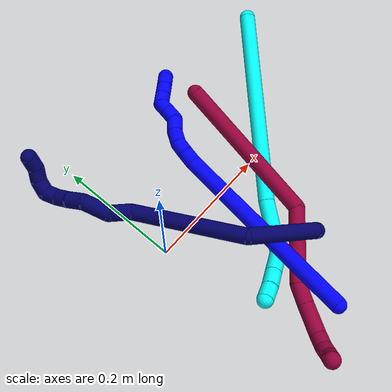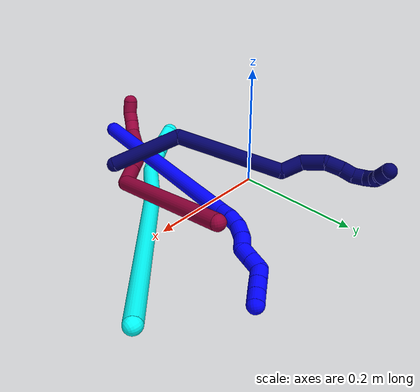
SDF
<sdf version="1.7">
 <world name="default">
  <model name="1">
   <static>0</static>
   <link name="1">
    <collision name="collision-cylinder-e_1_1_4">
     <pose>0.086936 0.073921 -0.103767 -2.52261 0.598793 -1.53551</pose>
     <geometry><cylinder><radius>0.0125</radius><length>0.308479</length></cylinder></geometry>
     <surface>
      <friction><ode><mu>1.16</mu><mu2>1.16</mu2><slip1>0</slip1><slip2>0</slip2></ode></friction>
      <contact><ode><kp>1e+06</kp><kd>1</kd><max_vel>0</max_vel><min_depth>0.001</min_depth></ode></contact>
     </surface>
    </collision>
    <visual name="visual-cylinder-e_1_1_4">
     <pose>0.086936 0.073921 -0.103767 -2.52261 0.598793 -1.53551</pose>
     <geometry><cylinder><radius>0.0125</radius><length>0.308479</length></cylinder></geometry>
     <material><ambient>0 0 1 1</ambient></material>
    </visual>
    <collision name="collision-cylinder-e_2_4_5">
     <pose>0.178797 0.154028 -0.214341 -2.40386 0.491513 -1.15116</pose>
     <geometry><cylinder><radius>0.0125</radius><length>0.020867</length></cylinder></geometry>
     <surface>
      <friction><ode><mu>1.16</mu><mu2>1.16</mu2><slip1>0</slip1><slip2>0</slip2></ode></friction>
      <contact><ode><kp>1e+06</kp><kd>1</kd><max_vel>0</max_vel><min_depth>0.001</min_depth></ode></contact>
     </surface>
    </collision>
    <visual name="visual-cylinder-e_2_4_5">
     <pose>0.178797 0.154028 -0.214341 -2.40386 0.491513 -1.15116</pose>
     <geometry><cylinder><radius>0.0125</radius><length>0.020867</length></cylinder></geometry>
     <material><ambient>0 0 1 1</ambient></material>
    </visual>
    <collision name="collision-cylinder-e_3_5_6">
     <pose>0.190608 0.166019 -0.226943 -2.35548 0.698456 -1.44135</pose>
     <geometry><cylinder><radius>0.0125</radius><length>0.021419</length></cylinder></geometry>
     <surface>
      <friction><ode><mu>1.16</mu><mu2>1.16</mu2><slip1>0</slip1><slip2>0</slip2></ode></friction>
      <contact><ode><kp>1e+06</kp><kd>1</kd><max_vel>0</max_vel><min_depth>0.001</min_depth></ode></contact>
     </surface>
    </collision>
    <visual name="visual-cylinder-e_3_5_6">
     <pose>0.190608 0.166019 -0.226943 -2.35548 0.698456 -1.44135</pose>
     <geometry><cylinder><radius>0.0125</radius><length>0.021419</length></cylinder></geometry>
     <material><ambient>0 0 1 1</ambient></material>
    </visual>
    <collision name="collision-cylinder-e_4_6_7">
     <pose>0.205592 0.180202 -0.236097 -1.95196 0.73118 -1.0298</pose>
     <geometry><cylinder><radius>0.0125</radius><length>0.024254</length></cylinder></geometry>
     <surface>
      <friction><ode><mu>1.16</mu><mu2>1.16</mu2><slip1>0</slip1><slip2>0</slip2></ode></friction>
      <contact><ode><kp>1e+06</kp><kd>1</kd><max_vel>0</max_vel><min_depth>0.001</min_depth></ode></contact>
     </surface>
    </collision>
    <visual name="visual-cylinder-e_4_6_7">
     <pose>0.205592 0.180202 -0.236097 -1.95196 0.73118 -1.0298</pose>
     <geometry><cylinder><radius>0.0125</radius><length>0.024254</length></cylinder></geometry>
     <material><ambient>0 0 1 1</ambient></material>
    </visual>
    <collision name="collision-cylinder-e_5_7_8">
     <pose>0.220832 0.19812 -0.240018 -1.62976 0.641848 -0.678007</pose>
     <geometry><cylinder><radius>0.0125</radius><length>0.023859</length></cylinder></geometry>
     <surface>
      <friction><ode><mu>1.16</mu><mu2>1.16</mu2><slip1>0</slip1><slip2>0</slip2></ode></friction>
      <contact><ode><kp>1e+06</kp><kd>1</kd><max_vel>0</max_vel><min_depth>0.001</min_depth></ode></contact>
     </surface>
    </collision>
    <visual name="visual-cylinder-e_5_7_8">
     <pose>0.220832 0.19812 -0.240018 -1.62976 0.641848 -0.678007</pose>
     <geometry><cylinder><radius>0.0125</radius><length>0.023859</length></cylinder></geometry>
     <material><ambient>0 0 1 1</ambient></material>
    </visual>
    <collision name="collision-cylinder-e_6_8_9">
     <pose>0.23509 0.212753 -0.24636 -2.41909 0.745778 -1.60553</pose>
     <geometry><cylinder><radius>0.0125</radius><length>0.020976</length></cylinder></geometry>
     <surface>
      <friction><ode><mu>1.16</mu><mu2>1.16</mu2><slip1>0</slip1><slip2>0</slip2></ode></friction>
      <contact><ode><kp>1e+06</kp><kd>1</kd><max_vel>0</max_vel><min_depth>0.001</min_depth></ode></contact>
     </surface>
    </collision>
    <visual name="visual-cylinder-e_6_8_9">
     <pose>0.23509 0.212753 -0.24636 -2.41909 0.745778 -1.60553</pose>
     <geometry><cylinder><radius>0.0125</radius><length>0.020976</length></cylinder></geometry>
     <material><ambient>0 0 1 1</ambient></material>
    </visual>
    <collision name="collision-cylinder-e_7_9_10">
     <pose>0.249075 0.222603 -0.257753 -2.43873 0.751002 -1.64319</pose>
     <geometry><cylinder><radius>0.0125</radius><length>0.02013</length></cylinder></geometry>
     <surface>
      <friction><ode><mu>1.16</mu><mu2>1.16</mu2><slip1>0</slip1><slip2>0</slip2></ode></friction>
      <contact><ode><kp>1e+06</kp><kd>1</kd><max_vel>0</max_vel><min_depth>0.001</min_depth></ode></contact>
     </surface>
    </collision>
    <visual name="visual-cylinder-e_7_9_10">
     <pose>0.249075 0.222603 -0.257753 -2.43873 0.751002 -1.64319</pose>
     <geometry><cylinder><radius>0.0125</radius><length>0.02013</length></cylinder></geometry>
     <material><ambient>0 0 1 1</ambient></material>
    </visual>
    <collision name="collision-cylinder-e_8_10_11">
     <pose>0.262315 0.235024 -0.262526 -1.46153 0.690584 -0.623754</pose>
     <geometry><cylinder><radius>0.0125</radius><length>0.020006</length></cylinder></geometry>
     <surface>
      <friction><ode><mu>1.16</mu><mu2>1.16</mu2><slip1>0</slip1><slip2>0</slip2></ode></friction>
      <contact><ode><kp>1e+06</kp><kd>1</kd><max_vel>0</max_vel><min_depth>0.001</min_depth></ode></contact>
     </surface>
    </collision>
    <visual name="visual-cylinder-e_8_10_11">
     <pose>0.262315 0.235024 -0.262526 -1.46153 0.690584 -0.623754</pose>
     <geometry><cylinder><radius>0.0125</radius><length>0.020006</length></cylinder></geometry>
     <material><ambient>0 0 1 1</ambient></material>
    </visual>
    <collision name="collision-cylinder-e_9_11_12">
     <pose>0.275085 0.250338 -0.260872 -1.46486 0.693881 -0.628746</pose>
     <geometry><cylinder><radius>0.0125</radius><length>0.02001</length></cylinder></geometry>
     <surface>
      <friction><ode><mu>1.16</mu><mu2>1.16</mu2><slip1>0</slip1><slip2>0</slip2></ode></friction>
      <contact><ode><kp>1e+06</kp><kd>1</kd><max_vel>0</max_vel><min_depth>0.001</min_depth></ode></contact>
     </surface>
    </collision>
    <visual name="visual-cylinder-e_9_11_12">
     <pose>0.275085 0.250338 -0.260872 -1.46486 0.693881 -0.628746</pose>
     <geometry><cylinder><radius>0.0125</radius><length>0.02001</length></cylinder></geometry>
     <material><ambient>0 0 1 1</ambient></material>
    </visual>
    <collision name="collision-cylinder-e_10_12_2">
     <pose>0.287603 0.265879 -0.259544 -1.50573 0.658471 -0.619649</pose>
     <geometry><cylinder><radius>0.0125</radius><length>0.02</length></cylinder></geometry>
     <surface>
      <friction><ode><mu>1.16</mu><mu2>1.16</mu2><slip1>0</slip1><slip2>0</slip2></ode></friction>
      <contact><ode><kp>1e+06</kp><kd>1</kd><max_vel>0</max_vel><min_depth>0.001</min_depth></ode></contact>
     </surface>
    </collision>
    <visual name="visual-cylinder-e_10_12_2">
     <pose>0.287603 0.265879 -0.259544 -1.50573 0.658471 -0.619649</pose>
     <geometry><cylinder><radius>0.0125</radius><length>0.02</length></cylinder></geometry>
     <material><ambient>0 0 1 1</ambient></material>
    </visual>
    <collision name="collision-sphere-2">
     <pose>0.293722 0.273771 -0.25903 0 -0 0</pose>
     <geometry><sphere><radius>0.0125</radius></sphere></geometry>
     <surface>
      <friction><ode><mu>1.16</mu><mu2>1.16</mu2><slip1>0</slip1><slip2>0</slip2></ode></friction>
      <contact><ode><kp>1e+06</kp><kd>1</kd><max_vel>0</max_vel><min_depth>0.001</min_depth></ode></contact>
     </surface>
    </collision>
    <visual name="visual-sphere-2">
     <pose>0.293722 0.273771 -0.25903 0 -0 0</pose>
     <geometry><sphere><radius>0.0125</radius></sphere></geometry>
     <material><ambient>0 0 1 1</ambient></material>
    </visual>
    <collision name="collision-sphere-12">
     <pose>0.281484 0.257986 -0.260059 0 -0 0</pose>
     <geometry><sphere><radius>0.0125</radius></sphere></geometry>
     <surface>
      <friction><ode><mu>1.16</mu><mu2>1.16</mu2><slip1>0</slip1><slip2>0</slip2></ode></friction>
      <contact><ode><kp>1e+06</kp><kd>1</kd><max_vel>0</max_vel><min_depth>0.001</min_depth></ode></contact>
     </surface>
    </collision>
    <visual name="visual-sphere-12">
     <pose>0.281484 0.257986 -0.260059 0 -0 0</pose>
     <geometry><sphere><radius>0.0125</radius></sphere></geometry>
     <material><ambient>0 0 1 1</ambient></material>
    </visual>
    <collision name="collision-sphere-11">
     <pose>0.268686 0.242689 -0.261685 0 -0 0</pose>
     <geometry><sphere><radius>0.0125</radius></sphere></geometry>
     <surface>
      <friction><ode><mu>1.16</mu><mu2>1.16</mu2><slip1>0</slip1><slip2>0</slip2></ode></friction>
      <contact><ode><kp>1e+06</kp><kd>1</kd><max_vel>0</max_vel><min_depth>0.001</min_depth></ode></contact>
     </surface>
    </collision>
    <visual name="visual-sphere-11">
     <pose>0.268686 0.242689 -0.261685 0 -0 0</pose>
     <geometry><sphere><radius>0.0125</radius></sphere></geometry>
     <material><ambient>0 0 1 1</ambient></material>
    </visual>
    <collision name="collision-sphere-10">
     <pose>0.255943 0.227359 -0.263367 0 -0 0</pose>
     <geometry><sphere><radius>0.0125</radius></sphere></geometry>
     <surface>
      <friction><ode><mu>1.16</mu><mu2>1.16</mu2><slip1>0</slip1><slip2>0</slip2></ode></friction>
      <contact><ode><kp>1e+06</kp><kd>1</kd><max_vel>0</max_vel><min_depth>0.001</min_depth></ode></contact>
     </surface>
    </collision>
    <visual name="visual-sphere-10">
     <pose>0.255943 0.227359 -0.263367 0 -0 0</pose>
     <geometry><sphere><radius>0.0125</radius></sphere></geometry>
     <material><ambient>0 0 1 1</ambient></material>
    </visual>
    <collision name="collision-sphere-9">
     <pose>0.242207 0.217847 -0.252139 0 -0 0</pose>
     <geometry><sphere><radius>0.0125</radius></sphere></geometry>
     <surface>
      <friction><ode><mu>1.16</mu><mu2>1.16</mu2><slip1>0</slip1><slip2>0</slip2></ode></friction>
      <contact><ode><kp>1e+06</kp><kd>1</kd><max_vel>0</max_vel><min_depth>0.001</min_depth></ode></contact>
     </surface>
    </collision>
    <visual name="visual-sphere-9">
     <pose>0.242207 0.217847 -0.252139 0 -0 0</pose>
     <geometry><sphere><radius>0.0125</radius></sphere></geometry>
     <material><ambient>0 0 1 1</ambient></material>
    </visual>
    <collision name="collision-sphere-4">
     <pose>0.173873 0.147841 -0.207534 0 -0 0</pose>
     <geometry><sphere><radius>0.0125</radius></sphere></geometry>
     <surface>
      <friction><ode><mu>1.16</mu><mu2>1.16</mu2><slip1>0</slip1><slip2>0</slip2></ode></friction>
      <contact><ode><kp>1e+06</kp><kd>1</kd><max_vel>0</max_vel><min_depth>0.001</min_depth></ode></contact>
     </surface>
    </collision>
    <visual name="visual-sphere-4">
     <pose>0.173873 0.147841 -0.207534 0 -0 0</pose>
     <geometry><sphere><radius>0.0125</radius></sphere></geometry>
     <material><ambient>0 0 1 1</ambient></material>
    </visual>
    <collision name="collision-sphere-1">
     <geometry><sphere><radius>0.0125</radius></sphere></geometry>
     <surface>
      <friction><ode><mu>1.16</mu><mu2>1.16</mu2><slip1>0</slip1><slip2>0</slip2></ode></friction>
      <contact><ode><kp>1e+06</kp><kd>1</kd><max_vel>0</max_vel><min_depth>0.001</min_depth></ode></contact>
     </surface>
    </collision>
    <visual name="visual-sphere-1">
     <geometry><sphere><radius>0.0125</radius></sphere></geometry>
     <material><ambient>0 0 1 1</ambient></material>
    </visual>
    <collision name="collision-sphere-8">
     <pose>0.227974 0.207658 -0.240581 0 -0 0</pose>
     <geometry><sphere><radius>0.0125</radius></sphere></geometry>
     <surface>
      <friction><ode><mu>1.16</mu><mu2>1.16</mu2><slip1>0</slip1><slip2>0</slip2></ode></friction>
      <contact><ode><kp>1e+06</kp><kd>1</kd><max_vel>0</max_vel><min_depth>0.001</min_depth></ode></contact>
     </surface>
    </collision>
    <visual name="visual-sphere-8">
     <pose>0.227974 0.207658 -0.240581 0 -0 0</pose>
     <geometry><sphere><radius>0.0125</radius></sphere></geometry>
     <material><ambient>0 0 1 1</ambient></material>
    </visual>
    <collision name="collision-sphere-5">
     <pose>0.183721 0.160215 -0.221148 0 -0 0</pose>
     <geometry><sphere><radius>0.0125</radius></sphere></geometry>
     <surface>
      <friction><ode><mu>1.16</mu><mu2>1.16</mu2><slip1>0</slip1><slip2>0</slip2></ode></friction>
      <contact><ode><kp>1e+06</kp><kd>1</kd><max_vel>0</max_vel><min_depth>0.001</min_depth></ode></contact>
     </surface>
    </collision>
    <visual name="visual-sphere-5">
     <pose>0.183721 0.160215 -0.221148 0 -0 0</pose>
     <geometry><sphere><radius>0.0125</radius></sphere></geometry>
     <material><ambient>0 0 1 1</ambient></material>
    </visual>
    <collision name="collision-sphere-6">
     <pose>0.197495 0.171822 -0.232738 0 -0 0</pose>
     <geometry><sphere><radius>0.0125</radius></sphere></geometry>
     <surface>
      <friction><ode><mu>1.16</mu><mu2>1.16</mu2><slip1>0</slip1><slip2>0</slip2></ode></friction>
      <contact><ode><kp>1e+06</kp><kd>1</kd><max_vel>0</max_vel><min_depth>0.001</min_depth></ode></contact>
     </surface>
    </collision>
    <visual name="visual-sphere-6">
     <pose>0.197495 0.171822 -0.232738 0 -0 0</pose>
     <geometry><sphere><radius>0.0125</radius></sphere></geometry>
     <material><ambient>0 0 1 1</ambient></material>
    </visual>
    <collision name="collision-sphere-7">
     <pose>0.21369 0.188581 -0.239455 0 -0 0</pose>
     <geometry><sphere><radius>0.0125</radius></sphere></geometry>
     <surface>
      <friction><ode><mu>1.16</mu><mu2>1.16</mu2><slip1>0</slip1><slip2>0</slip2></ode></friction>
      <contact><ode><kp>1e+06</kp><kd>1</kd><max_vel>0</max_vel><min_depth>0.001</min_depth></ode></contact>
     </surface>
    </collision>
    <visual name="visual-sphere-7">
     <pose>0.21369 0.188581 -0.239455 0 -0 0</pose>
     <geometry><sphere><radius>0.0125</radius></sphere></geometry>
     <material><ambient>0 0 1 1</ambient></material>
    </visual>
    <inertial>
     <pose>0.142673 0.125286 -0.157631 0 -0 0</pose>
     <mass>0.5</mass>
     <inertia>
      <ixx>-0.001938</ixx>
      <ixy>0</ixy>
      <ixz>0</ixz>
      <iyy>-0.001279</iyy>
      <iyz>0</iyz>
      <izz>-0.002603</izz>
     </inertia>
    </inertial>
   </link>
   <pose>0.091416 -0.246867 0.042864 2.02371 0.952592 1.03103</pose>
  </model>
  <model name="3">
   <static>0</static>
   <link name="3">
    <collision name="collision-cylinder-e_1_1_4">
     <pose>-0.093819 -0.087201 -0.099148 2.42022 -0.617763 -1.40431</pose>
     <geometry><cylinder><radius>0.0125</radius><length>0.323954</length></cylinder></geometry>
     <surface>
      <friction><ode><mu>1.16</mu><mu2>1.16</mu2><slip1>0</slip1><slip2>0</slip2></ode></friction>
      <contact><ode><kp>1e+06</kp><kd>1</kd><max_vel>0</max_vel><min_depth>0.001</min_depth></ode></contact>
     </surface>
    </collision>
    <visual name="visual-cylinder-e_1_1_4">
     <pose>-0.093819 -0.087201 -0.099148 2.42022 -0.617763 -1.40431</pose>
     <geometry><cylinder><radius>0.0125</radius><length>0.323954</length></cylinder></geometry>
     <material><ambient>0.003922 1 0.996078 1</ambient></material>
    </visual>
    <collision name="collision-cylinder-e_2_4_5">
     <pose>-0.2165 -0.194679 -0.221045 2.41358 -0.758255 -1.61549</pose>
     <geometry><cylinder><radius>0.0125</radius><length>0.083943</length></cylinder></geometry>
     <surface>
      <friction><ode><mu>1.16</mu><mu2>1.16</mu2><slip1>0</slip1><slip2>0</slip2></ode></friction>
      <contact><ode><kp>1e+06</kp><kd>1</kd><max_vel>0</max_vel><min_depth>0.001</min_depth></ode></contact>
     </surface>
    </collision>
    <visual name="visual-cylinder-e_2_4_5">
     <pose>-0.2165 -0.194679 -0.221045 2.41358 -0.758255 -1.61549</pose>
     <geometry><cylinder><radius>0.0125</radius><length>0.083943</length></cylinder></geometry>
     <material><ambient>0.003922 1 0.996078 1</ambient></material>
    </visual>
    <collision name="collision-cylinder-e_3_5_6">
     <pose>-0.256812 -0.213966 -0.260256 -3.08158 -0.60682 2.95042</pose>
     <geometry><cylinder><radius>0.0125</radius><length>0.040155</length></cylinder></geometry>
     <surface>
      <friction><ode><mu>1.16</mu><mu2>1.16</mu2><slip1>0</slip1><slip2>0</slip2></ode></friction>
      <contact><ode><kp>1e+06</kp><kd>1</kd><max_vel>0</max_vel><min_depth>0.001</min_depth></ode></contact>
     </surface>
    </collision>
    <visual name="visual-cylinder-e_3_5_6">
     <pose>-0.256812 -0.213966 -0.260256 -3.08158 -0.60682 2.95042</pose>
     <geometry><cylinder><radius>0.0125</radius><length>0.040155</length></cylinder></geometry>
     <material><ambient>0.003922 1 0.996078 1</ambient></material>
    </visual>
    <collision name="collision-cylinder-e_4_6_7">
     <pose>-0.276294 -0.211985 -0.288061 -3.05433 -0.614493 2.86812</pose>
     <geometry><cylinder><radius>0.0125</radius><length>0.027867</length></cylinder></geometry>
     <surface>
      <friction><ode><mu>1.16</mu><mu2>1.16</mu2><slip1>0</slip1><slip2>0</slip2></ode></friction>
      <contact><ode><kp>1e+06</kp><kd>1</kd><max_vel>0</max_vel><min_depth>0.001</min_depth></ode></contact>
     </surface>
    </collision>
    <visual name="visual-cylinder-e_4_6_7">
     <pose>-0.276294 -0.211985 -0.288061 -3.05433 -0.614493 2.86812</pose>
     <geometry><cylinder><radius>0.0125</radius><length>0.027867</length></cylinder></geometry>
     <material><ambient>0.003922 1 0.996078 1</ambient></material>
    </visual>
    <collision name="collision-cylinder-e_5_7_2">
     <pose>-0.290329 -0.210302 -0.309817 -3.07535 -0.521798 2.89463</pose>
     <geometry><cylinder><radius>0.0125</radius><length>0.024081</length></cylinder></geometry>
     <surface>
      <friction><ode><mu>1.16</mu><mu2>1.16</mu2><slip1>0</slip1><slip2>0</slip2></ode></friction>
      <contact><ode><kp>1e+06</kp><kd>1</kd><max_vel>0</max_vel><min_depth>0.001</min_depth></ode></contact>
     </surface>
    </collision>
    <visual name="visual-cylinder-e_5_7_2">
     <pose>-0.290329 -0.210302 -0.309817 -3.07535 -0.521798 2.89463</pose>
     <geometry><cylinder><radius>0.0125</radius><length>0.024081</length></cylinder></geometry>
     <material><ambient>0.003922 1 0.996078 1</ambient></material>
    </visual>
    <collision name="collision-sphere-2">
     <pose>-0.296331 -0.209611 -0.320232 0 -0 0</pose>
     <geometry><sphere><radius>0.0125</radius></sphere></geometry>
     <surface>
      <friction><ode><mu>1.16</mu><mu2>1.16</mu2><slip1>0</slip1><slip2>0</slip2></ode></friction>
      <contact><ode><kp>1e+06</kp><kd>1</kd><max_vel>0</max_vel><min_depth>0.001</min_depth></ode></contact>
     </surface>
    </collision>
    <visual name="visual-sphere-2">
     <pose>-0.296331 -0.209611 -0.320232 0 -0 0</pose>
     <geometry><sphere><radius>0.0125</radius></sphere></geometry>
     <material><ambient>0.003922 1 0.996078 1</ambient></material>
    </visual>
    <collision name="collision-sphere-7">
     <pose>-0.284328 -0.210993 -0.299402 0 -0 0</pose>
     <geometry><sphere><radius>0.0125</radius></sphere></geometry>
     <surface>
      <friction><ode><mu>1.16</mu><mu2>1.16</mu2><slip1>0</slip1><slip2>0</slip2></ode></friction>
      <contact><ode><kp>1e+06</kp><kd>1</kd><max_vel>0</max_vel><min_depth>0.001</min_depth></ode></contact>
     </surface>
    </collision>
    <visual name="visual-sphere-7">
     <pose>-0.284328 -0.210993 -0.299402 0 -0 0</pose>
     <geometry><sphere><radius>0.0125</radius></sphere></geometry>
     <material><ambient>0.003922 1 0.996078 1</ambient></material>
    </visual>
    <collision name="collision-sphere-6">
     <pose>-0.268261 -0.212977 -0.276719 0 -0 0</pose>
     <geometry><sphere><radius>0.0125</radius></sphere></geometry>
     <surface>
      <friction><ode><mu>1.16</mu><mu2>1.16</mu2><slip1>0</slip1><slip2>0</slip2></ode></friction>
      <contact><ode><kp>1e+06</kp><kd>1</kd><max_vel>0</max_vel><min_depth>0.001</min_depth></ode></contact>
     </surface>
    </collision>
    <visual name="visual-sphere-6">
     <pose>-0.268261 -0.212977 -0.276719 0 -0 0</pose>
     <geometry><sphere><radius>0.0125</radius></sphere></geometry>
     <material><ambient>0.003922 1 0.996078 1</ambient></material>
    </visual>
    <collision name="collision-sphere-5">
     <pose>-0.245362 -0.214955 -0.243793 0 -0 0</pose>
     <geometry><sphere><radius>0.0125</radius></sphere></geometry>
     <surface>
      <friction><ode><mu>1.16</mu><mu2>1.16</mu2><slip1>0</slip1><slip2>0</slip2></ode></friction>
      <contact><ode><kp>1e+06</kp><kd>1</kd><max_vel>0</max_vel><min_depth>0.001</min_depth></ode></contact>
     </surface>
    </collision>
    <visual name="visual-sphere-5">
     <pose>-0.245362 -0.214955 -0.243793 0 -0 0</pose>
     <geometry><sphere><radius>0.0125</radius></sphere></geometry>
     <material><ambient>0.003922 1 0.996078 1</ambient></material>
    </visual>
    <collision name="collision-sphere-1">
     <geometry><sphere><radius>0.0125</radius></sphere></geometry>
     <surface>
      <friction><ode><mu>1.16</mu><mu2>1.16</mu2><slip1>0</slip1><slip2>0</slip2></ode></friction>
      <contact><ode><kp>1e+06</kp><kd>1</kd><max_vel>0</max_vel><min_depth>0.001</min_depth></ode></contact>
     </surface>
    </collision>
    <visual name="visual-sphere-1">
     <geometry><sphere><radius>0.0125</radius></sphere></geometry>
     <material><ambient>0.003922 1 0.996078 1</ambient></material>
    </visual>
    <collision name="collision-sphere-4">
     <pose>-0.187638 -0.174403 -0.198297 0 -0 0</pose>
     <geometry><sphere><radius>0.0125</radius></sphere></geometry>
     <surface>
      <friction><ode><mu>1.16</mu><mu2>1.16</mu2><slip1>0</slip1><slip2>0</slip2></ode></friction>
      <contact><ode><kp>1e+06</kp><kd>1</kd><max_vel>0</max_vel><min_depth>0.001</min_depth></ode></contact>
     </surface>
    </collision>
    <visual name="visual-sphere-4">
     <pose>-0.187638 -0.174403 -0.198297 0 -0 0</pose>
     <geometry><sphere><radius>0.0125</radius></sphere></geometry>
     <material><ambient>0.003922 1 0.996078 1</ambient></material>
    </visual>
    <inertial>
     <pose>-0.14714 -0.128309 -0.153227 0 -0 0</pose>
     <mass>0.5</mass>
     <inertia>
      <ixx>-0.001974</ixx>
      <ixy>0</ixy>
      <ixz>0</ixz>
      <iyy>-0.001583</iyy>
      <iyz>0</iyz>
      <izz>0.003223</izz>
     </inertia>
    </inertial>
   </link>
   <pose>0.388501 0.159874 0.062265 1.64039 0.51576 1.49675</pose>
  </model>
  <model name="7">
   <static>0</static>
   <link name="7">
    <collision name="collision-cylinder-e_1_1_4">
     <pose>0.027385 0.049968 -0.013447 -1.83367 0.486752 -0.626564</pose>
     <geometry><cylinder><radius>0.0125</radius><length>0.11709</length></cylinder></geometry>
     <surface>
      <friction><ode><mu>1.16</mu><mu2>1.16</mu2><slip1>0</slip1><slip2>0</slip2></ode></friction>
      <contact><ode><kp>1e+06</kp><kd>1</kd><max_vel>0</max_vel><min_depth>0.001</min_depth></ode></contact>
     </surface>
    </collision>
    <visual name="visual-cylinder-e_1_1_4">
     <pose>0.027385 0.049968 -0.013447 -1.83367 0.486752 -0.626564</pose>
     <geometry><cylinder><radius>0.0125</radius><length>0.11709</length></cylinder></geometry>
     <material><ambient>0.003922 0 0.403922 1</ambient></material>
    </visual>
    <collision name="collision-cylinder-e_2_4_5">
     <pose>0.048518 0.16408 -0.089914 -2.34735 -0.069417 0.165205</pose>
     <geometry><cylinder><radius>0.0125</radius><length>0.180279</length></cylinder></geometry>
     <surface>
      <friction><ode><mu>1.16</mu><mu2>1.16</mu2><slip1>0</slip1><slip2>0</slip2></ode></friction>
      <contact><ode><kp>1e+06</kp><kd>1</kd><max_vel>0</max_vel><min_depth>0.001</min_depth></ode></contact>
     </surface>
    </collision>
    <visual name="visual-cylinder-e_2_4_5">
     <pose>0.048518 0.16408 -0.089914 -2.34735 -0.069417 0.165205</pose>
     <geometry><cylinder><radius>0.0125</radius><length>0.180279</length></cylinder></geometry>
     <material><ambient>0.003922 0 0.403922 1</ambient></material>
    </visual>
    <collision name="collision-cylinder-e_3_5_6">
     <pose>0.050568 0.243303 -0.156738 -1.81789 0.49041 -0.621587</pose>
     <geometry><cylinder><radius>0.0125</radius><length>0.035256</length></cylinder></geometry>
     <surface>
      <friction><ode><mu>1.16</mu><mu2>1.16</mu2><slip1>0</slip1><slip2>0</slip2></ode></friction>
      <contact><ode><kp>1e+06</kp><kd>1</kd><max_vel>0</max_vel><min_depth>0.001</min_depth></ode></contact>
     </surface>
    </collision>
    <visual name="visual-cylinder-e_3_5_6">
     <pose>0.050568 0.243303 -0.156738 -1.81789 0.49041 -0.621587</pose>
     <geometry><cylinder><radius>0.0125</radius><length>0.035256</length></cylinder></geometry>
     <material><ambient>0.003922 0 0.403922 1</ambient></material>
    </visual>
    <collision name="collision-cylinder-e_4_6_7">
     <pose>0.065492 0.270173 -0.175375 -2.46994 0.336174 -0.905009</pose>
     <geometry><cylinder><radius>0.0125</radius><length>0.040147</length></cylinder></geometry>
     <surface>
      <friction><ode><mu>1.16</mu><mu2>1.16</mu2><slip1>0</slip1><slip2>0</slip2></ode></friction>
      <contact><ode><kp>1e+06</kp><kd>1</kd><max_vel>0</max_vel><min_depth>0.001</min_depth></ode></contact>
     </surface>
    </collision>
    <visual name="visual-cylinder-e_4_6_7">
     <pose>0.065492 0.270173 -0.175375 -2.46994 0.336174 -0.905009</pose>
     <geometry><cylinder><radius>0.0125</radius><length>0.040147</length></cylinder></geometry>
     <material><ambient>0.003922 0 0.403922 1</ambient></material>
    </visual>
    <collision name="collision-cylinder-e_5_7_8">
     <pose>0.070101 0.291385 -0.198832 -2.31208 -0.156362 0.352167</pose>
     <geometry><cylinder><radius>0.0125</radius><length>0.025857</length></cylinder></geometry>
     <surface>
      <friction><ode><mu>1.16</mu><mu2>1.16</mu2><slip1>0</slip1><slip2>0</slip2></ode></friction>
      <contact><ode><kp>1e+06</kp><kd>1</kd><max_vel>0</max_vel><min_depth>0.001</min_depth></ode></contact>
     </surface>
    </collision>
    <visual name="visual-cylinder-e_5_7_8">
     <pose>0.070101 0.291385 -0.198832 -2.31208 -0.156362 0.352167</pose>
     <geometry><cylinder><radius>0.0125</radius><length>0.025857</length></cylinder></geometry>
     <material><ambient>0.003922 0 0.403922 1</ambient></material>
    </visual>
    <collision name="collision-cylinder-e_6_8_9">
     <pose>0.065352 0.307342 -0.214906 -2.42139 -0.269313 0.690776</pose>
     <geometry><cylinder><radius>0.0125</radius><length>0.020566</length></cylinder></geometry>
     <surface>
      <friction><ode><mu>1.16</mu><mu2>1.16</mu2><slip1>0</slip1><slip2>0</slip2></ode></friction>
      <contact><ode><kp>1e+06</kp><kd>1</kd><max_vel>0</max_vel><min_depth>0.001</min_depth></ode></contact>
     </surface>
    </collision>
    <visual name="visual-cylinder-e_6_8_9">
     <pose>0.065352 0.307342 -0.214906 -2.42139 -0.269313 0.690776</pose>
     <geometry><cylinder><radius>0.0125</radius><length>0.020566</length></cylinder></geometry>
     <material><ambient>0.003922 0 0.403922 1</ambient></material>
    </visual>
    <collision name="collision-cylinder-e_7_9_10">
     <pose>0.0638 0.320155 -0.23009 -2.45986 0.118352 -0.330992</pose>
     <geometry><cylinder><radius>0.0125</radius><length>0.020058</length></cylinder></geometry>
     <surface>
      <friction><ode><mu>1.16</mu><mu2>1.16</mu2><slip1>0</slip1><slip2>0</slip2></ode></friction>
      <contact><ode><kp>1e+06</kp><kd>1</kd><max_vel>0</max_vel><min_depth>0.001</min_depth></ode></contact>
     </surface>
    </collision>
    <visual name="visual-cylinder-e_7_9_10">
     <pose>0.0638 0.320155 -0.23009 -2.45986 0.118352 -0.330992</pose>
     <geometry><cylinder><radius>0.0125</radius><length>0.020058</length></cylinder></geometry>
     <material><ambient>0.003922 0 0.403922 1</ambient></material>
    </visual>
    <collision name="collision-cylinder-e_8_10_11">
     <pose>0.069607 0.326763 -0.246887 -3.10493 0.471354 -2.9892</pose>
     <geometry><cylinder><radius>0.0125</radius><length>0.020362</length></cylinder></geometry>
     <surface>
      <friction><ode><mu>1.16</mu><mu2>1.16</mu2><slip1>0</slip1><slip2>0</slip2></ode></friction>
      <contact><ode><kp>1e+06</kp><kd>1</kd><max_vel>0</max_vel><min_depth>0.001</min_depth></ode></contact>
     </surface>
    </collision>
    <visual name="visual-cylinder-e_8_10_11">
     <pose>0.069607 0.326763 -0.246887 -3.10493 0.471354 -2.9892</pose>
     <geometry><cylinder><radius>0.0125</radius><length>0.020362</length></cylinder></geometry>
     <material><ambient>0.003922 0 0.403922 1</ambient></material>
    </visual>
    <collision name="collision-cylinder-e_9_11_12">
     <pose>0.081086 0.324075 -0.262693 2.72034 0.748131 2.14415</pose>
     <geometry><cylinder><radius>0.0125</radius><length>0.020156</length></cylinder></geometry>
     <surface>
      <friction><ode><mu>1.16</mu><mu2>1.16</mu2><slip1>0</slip1><slip2>0</slip2></ode></friction>
      <contact><ode><kp>1e+06</kp><kd>1</kd><max_vel>0</max_vel><min_depth>0.001</min_depth></ode></contact>
     </surface>
    </collision>
    <visual name="visual-cylinder-e_9_11_12">
     <pose>0.081086 0.324075 -0.262693 2.72034 0.748131 2.14415</pose>
     <geometry><cylinder><radius>0.0125</radius><length>0.020156</length></cylinder></geometry>
     <material><ambient>0.003922 0 0.403922 1</ambient></material>
    </visual>
    <collision name="collision-cylinder-e_10_12_2">
     <pose>0.096067 0.321359 -0.27545 -3.09101 0.932874 -3.04119</pose>
     <geometry><cylinder><radius>0.0125</radius><length>0.020228</length></cylinder></geometry>
     <surface>
      <friction><ode><mu>1.16</mu><mu2>1.16</mu2><slip1>0</slip1><slip2>0</slip2></ode></friction>
      <contact><ode><kp>1e+06</kp><kd>1</kd><max_vel>0</max_vel><min_depth>0.001</min_depth></ode></contact>
     </surface>
    </collision>
    <visual name="visual-cylinder-e_10_12_2">
     <pose>0.096067 0.321359 -0.27545 -3.09101 0.932874 -3.04119</pose>
     <geometry><cylinder><radius>0.0125</radius><length>0.020228</length></cylinder></geometry>
     <material><ambient>0.003922 0 0.403922 1</ambient></material>
    </visual>
    <collision name="collision-sphere-2">
     <pose>0.104192 0.321664 -0.281465 0 -0 0</pose>
     <geometry><sphere><radius>0.0125</radius></sphere></geometry>
     <surface>
      <friction><ode><mu>1.16</mu><mu2>1.16</mu2><slip1>0</slip1><slip2>0</slip2></ode></friction>
      <contact><ode><kp>1e+06</kp><kd>1</kd><max_vel>0</max_vel><min_depth>0.001</min_depth></ode></contact>
     </surface>
    </collision>
    <visual name="visual-sphere-2">
     <pose>0.104192 0.321664 -0.281465 0 -0 0</pose>
     <geometry><sphere><radius>0.0125</radius></sphere></geometry>
     <material><ambient>0.003922 0 0.403922 1</ambient></material>
    </visual>
    <collision name="collision-sphere-12">
     <pose>0.087942 0.321054 -0.269434 0 -0 0</pose>
     <geometry><sphere><radius>0.0125</radius></sphere></geometry>
     <surface>
      <friction><ode><mu>1.16</mu><mu2>1.16</mu2><slip1>0</slip1><slip2>0</slip2></ode></friction>
      <contact><ode><kp>1e+06</kp><kd>1</kd><max_vel>0</max_vel><min_depth>0.001</min_depth></ode></contact>
     </surface>
    </collision>
    <visual name="visual-sphere-12">
     <pose>0.087942 0.321054 -0.269434 0 -0 0</pose>
     <geometry><sphere><radius>0.0125</radius></sphere></geometry>
     <material><ambient>0.003922 0 0.403922 1</ambient></material>
    </visual>
    <collision name="collision-sphere-11">
     <pose>0.07423 0.327095 -0.255952 0 -0 0</pose>
     <geometry><sphere><radius>0.0125</radius></sphere></geometry>
     <surface>
      <friction><ode><mu>1.16</mu><mu2>1.16</mu2><slip1>0</slip1><slip2>0</slip2></ode></friction>
      <contact><ode><kp>1e+06</kp><kd>1</kd><max_vel>0</max_vel><min_depth>0.001</min_depth></ode></contact>
     </surface>
    </collision>
    <visual name="visual-sphere-11">
     <pose>0.07423 0.327095 -0.255952 0 -0 0</pose>
     <geometry><sphere><radius>0.0125</radius></sphere></geometry>
     <material><ambient>0.003922 0 0.403922 1</ambient></material>
    </visual>
    <collision name="collision-sphere-10">
     <pose>0.064984 0.326431 -0.237823 0 -0 0</pose>
     <geometry><sphere><radius>0.0125</radius></sphere></geometry>
     <surface>
      <friction><ode><mu>1.16</mu><mu2>1.16</mu2><slip1>0</slip1><slip2>0</slip2></ode></friction>
      <contact><ode><kp>1e+06</kp><kd>1</kd><max_vel>0</max_vel><min_depth>0.001</min_depth></ode></contact>
     </surface>
    </collision>
    <visual name="visual-sphere-10">
     <pose>0.064984 0.326431 -0.237823 0 -0 0</pose>
     <geometry><sphere><radius>0.0125</radius></sphere></geometry>
     <material><ambient>0.003922 0 0.403922 1</ambient></material>
    </visual>
    <collision name="collision-sphere-9">
     <pose>0.062616 0.31388 -0.222357 0 -0 0</pose>
     <geometry><sphere><radius>0.0125</radius></sphere></geometry>
     <surface>
      <friction><ode><mu>1.16</mu><mu2>1.16</mu2><slip1>0</slip1><slip2>0</slip2></ode></friction>
      <contact><ode><kp>1e+06</kp><kd>1</kd><max_vel>0</max_vel><min_depth>0.001</min_depth></ode></contact>
     </surface>
    </collision>
    <visual name="visual-sphere-9">
     <pose>0.062616 0.31388 -0.222357 0 -0 0</pose>
     <geometry><sphere><radius>0.0125</radius></sphere></geometry>
     <material><ambient>0.003922 0 0.403922 1</ambient></material>
    </visual>
    <collision name="collision-sphere-4">
     <pose>0.05477 0.099936 -0.026893 0 -0 0</pose>
     <geometry><sphere><radius>0.0125</radius></sphere></geometry>
     <surface>
      <friction><ode><mu>1.16</mu><mu2>1.16</mu2><slip1>0</slip1><slip2>0</slip2></ode></friction>
      <contact><ode><kp>1e+06</kp><kd>1</kd><max_vel>0</max_vel><min_depth>0.001</min_depth></ode></contact>
     </surface>
    </collision>
    <visual name="visual-sphere-4">
     <pose>0.05477 0.099936 -0.026893 0 -0 0</pose>
     <geometry><sphere><radius>0.0125</radius></sphere></geometry>
     <material><ambient>0.003922 0 0.403922 1</ambient></material>
    </visual>
    <collision name="collision-sphere-1">
     <geometry><sphere><radius>0.0125</radius></sphere></geometry>
     <surface>
      <friction><ode><mu>1.16</mu><mu2>1.16</mu2><slip1>0</slip1><slip2>0</slip2></ode></friction>
      <contact><ode><kp>1e+06</kp><kd>1</kd><max_vel>0</max_vel><min_depth>0.001</min_depth></ode></contact>
     </surface>
    </collision>
    <visual name="visual-sphere-1">
     <geometry><sphere><radius>0.0125</radius></sphere></geometry>
     <material><ambient>0.003922 0 0.403922 1</ambient></material>
    </visual>
    <collision name="collision-sphere-8">
     <pose>0.068088 0.300805 -0.207455 0 -0 0</pose>
     <geometry><sphere><radius>0.0125</radius></sphere></geometry>
     <surface>
      <friction><ode><mu>1.16</mu><mu2>1.16</mu2><slip1>0</slip1><slip2>0</slip2></ode></friction>
      <contact><ode><kp>1e+06</kp><kd>1</kd><max_vel>0</max_vel><min_depth>0.001</min_depth></ode></contact>
     </surface>
    </collision>
    <visual name="visual-sphere-8">
     <pose>0.068088 0.300805 -0.207455 0 -0 0</pose>
     <geometry><sphere><radius>0.0125</radius></sphere></geometry>
     <material><ambient>0.003922 0 0.403922 1</ambient></material>
    </visual>
    <collision name="collision-sphere-5">
     <pose>0.042266 0.228225 -0.152934 0 -0 0</pose>
     <geometry><sphere><radius>0.0125</radius></sphere></geometry>
     <surface>
      <friction><ode><mu>1.16</mu><mu2>1.16</mu2><slip1>0</slip1><slip2>0</slip2></ode></friction>
      <contact><ode><kp>1e+06</kp><kd>1</kd><max_vel>0</max_vel><min_depth>0.001</min_depth></ode></contact>
     </surface>
    </collision>
    <visual name="visual-sphere-5">
     <pose>0.042266 0.228225 -0.152934 0 -0 0</pose>
     <geometry><sphere><radius>0.0125</radius></sphere></geometry>
     <material><ambient>0.003922 0 0.403922 1</ambient></material>
    </visual>
    <collision name="collision-sphere-6">
     <pose>0.058871 0.258381 -0.160541 0 -0 0</pose>
     <geometry><sphere><radius>0.0125</radius></sphere></geometry>
     <surface>
      <friction><ode><mu>1.16</mu><mu2>1.16</mu2><slip1>0</slip1><slip2>0</slip2></ode></friction>
      <contact><ode><kp>1e+06</kp><kd>1</kd><max_vel>0</max_vel><min_depth>0.001</min_depth></ode></contact>
     </surface>
    </collision>
    <visual name="visual-sphere-6">
     <pose>0.058871 0.258381 -0.160541 0 -0 0</pose>
     <geometry><sphere><radius>0.0125</radius></sphere></geometry>
     <material><ambient>0.003922 0 0.403922 1</ambient></material>
    </visual>
    <collision name="collision-sphere-7">
     <pose>0.072114 0.281965 -0.190209 0 -0 0</pose>
     <geometry><sphere><radius>0.0125</radius></sphere></geometry>
     <surface>
      <friction><ode><mu>1.16</mu><mu2>1.16</mu2><slip1>0</slip1><slip2>0</slip2></ode></friction>
      <contact><ode><kp>1e+06</kp><kd>1</kd><max_vel>0</max_vel><min_depth>0.001</min_depth></ode></contact>
     </surface>
    </collision>
    <visual name="visual-sphere-7">
     <pose>0.072114 0.281965 -0.190209 0 -0 0</pose>
     <geometry><sphere><radius>0.0125</radius></sphere></geometry>
     <material><ambient>0.003922 0 0.403922 1</ambient></material>
    </visual>
    <inertial>
     <pose>0.051593 0.189637 -0.120841 0 -0 0</pose>
     <mass>0.5</mass>
     <inertia>
      <ixx>0.000608</ixx>
      <ixy>0</ixy>
      <ixz>0</ixz>
      <iyy>-0.000303</iyy>
      <iyz>0</iyz>
      <izz>-0.000542</izz>
     </inertia>
    </inertial>
   </link>
   <pose>0.164016 -0.156455 0.038215 -1.30152 -1.4465 2.50574</pose>
  </model>
  <model name="8">
   <static>0</static>
   <link name="8">
    <collision name="collision-cylinder-e_1_1_4">
     <pose>-0.037225 -0.110184 0.023545 1.36028 -0.319099 -0.258874</pose>
     <geometry><cylinder><radius>0.0125</radius><length>0.237323</length></cylinder></geometry>
     <surface>
      <friction><ode><mu>1.16</mu><mu2>1.16</mu2><slip1>0</slip1><slip2>0</slip2></ode></friction>
      <contact><ode><kp>1e+06</kp><kd>1</kd><max_vel>0</max_vel><min_depth>0.001</min_depth></ode></contact>
     </surface>
    </collision>
    <visual name="visual-cylinder-e_1_1_4">
     <pose>-0.037225 -0.110184 0.023545 1.36028 -0.319099 -0.258874</pose>
     <geometry><cylinder><radius>0.0125</radius><length>0.237323</length></cylinder></geometry>
     <material><ambient>0.584314 0 0.227451 1</ambient></material>
    </visual>
    <collision name="collision-cylinder-e_2_4_5">
     <pose>-0.095616 -0.231316 0.053179 1.06318 -1.03634 -0.646986</pose>
     <geometry><cylinder><radius>0.0125</radius><length>0.049189</length></cylinder></geometry>
     <surface>
      <friction><ode><mu>1.16</mu><mu2>1.16</mu2><slip1>0</slip1><slip2>0</slip2></ode></friction>
      <contact><ode><kp>1e+06</kp><kd>1</kd><max_vel>0</max_vel><min_depth>0.001</min_depth></ode></contact>
     </surface>
    </collision>
    <visual name="visual-cylinder-e_2_4_5">
     <pose>-0.095616 -0.231316 0.053179 1.06318 -1.03634 -0.646986</pose>
     <geometry><cylinder><radius>0.0125</radius><length>0.049189</length></cylinder></geometry>
     <material><ambient>0.584314 0 0.227451 1</ambient></material>
    </visual>
    <collision name="collision-cylinder-e_3_5_6">
     <pose>-0.146114 -0.257474 0.067543 1.07258 -1.03756 -0.654345</pose>
     <geometry><cylinder><radius>0.0125</radius><length>0.068127</length></cylinder></geometry>
     <surface>
      <friction><ode><mu>1.16</mu><mu2>1.16</mu2><slip1>0</slip1><slip2>0</slip2></ode></friction>
      <contact><ode><kp>1e+06</kp><kd>1</kd><max_vel>0</max_vel><min_depth>0.001</min_depth></ode></contact>
     </surface>
    </collision>
    <visual name="visual-cylinder-e_3_5_6">
     <pose>-0.146114 -0.257474 0.067543 1.07258 -1.03756 -0.654345</pose>
     <geometry><cylinder><radius>0.0125</radius><length>0.068127</length></cylinder></geometry>
     <material><ambient>0.584314 0 0.227451 1</ambient></material>
    </visual>
    <collision name="collision-cylinder-e_4_6_7">
     <pose>-0.185715 -0.282761 0.082658 0.97439 -0.700361 -0.38227</pose>
     <geometry><cylinder><radius>0.0125</radius><length>0.031857</length></cylinder></geometry>
     <surface>
      <friction><ode><mu>1.16</mu><mu2>1.16</mu2><slip1>0</slip1><slip2>0</slip2></ode></friction>
      <contact><ode><kp>1e+06</kp><kd>1</kd><max_vel>0</max_vel><min_depth>0.001</min_depth></ode></contact>
     </surface>
    </collision>
    <visual name="visual-cylinder-e_4_6_7">
     <pose>-0.185715 -0.282761 0.082658 0.97439 -0.700361 -0.38227</pose>
     <geometry><cylinder><radius>0.0125</radius><length>0.031857</length></cylinder></geometry>
     <material><ambient>0.584314 0 0.227451 1</ambient></material>
    </visual>
    <collision name="collision-cylinder-e_5_7_8">
     <pose>-0.210686 -0.307905 0.100618 0.935034 -0.665712 -0.345589</pose>
     <geometry><cylinder><radius>0.0125</radius><length>0.04762</length></cylinder></geometry>
     <surface>
      <friction><ode><mu>1.16</mu><mu2>1.16</mu2><slip1>0</slip1><slip2>0</slip2></ode></friction>
      <contact><ode><kp>1e+06</kp><kd>1</kd><max_vel>0</max_vel><min_depth>0.001</min_depth></ode></contact>
     </surface>
    </collision>
    <visual name="visual-cylinder-e_5_7_8">
     <pose>-0.210686 -0.307905 0.100618 0.935034 -0.665712 -0.345589</pose>
     <geometry><cylinder><radius>0.0125</radius><length>0.04762</length></cylinder></geometry>
     <material><ambient>0.584314 0 0.227451 1</ambient></material>
    </visual>
    <collision name="collision-cylinder-e_6_8_9">
     <pose>-0.230997 -0.326812 0.121634 0.370076 -0.48583 -0.092703</pose>
     <geometry><cylinder><radius>0.0125</radius><length>0.024009</length></cylinder></geometry>
     <surface>
      <friction><ode><mu>1.16</mu><mu2>1.16</mu2><slip1>0</slip1><slip2>0</slip2></ode></friction>
      <contact><ode><kp>1e+06</kp><kd>1</kd><max_vel>0</max_vel><min_depth>0.001</min_depth></ode></contact>
     </surface>
    </collision>
    <visual name="visual-cylinder-e_6_8_9">
     <pose>-0.230997 -0.326812 0.121634 0.370076 -0.48583 -0.092703</pose>
     <geometry><cylinder><radius>0.0125</radius><length>0.024009</length></cylinder></geometry>
     <material><ambient>0.584314 0 0.227451 1</ambient></material>
    </visual>
    <collision name="collision-cylinder-e_7_9_10">
     <pose>-0.239556 -0.332928 0.140849 0.239651 -0.298718 -0.036232</pose>
     <geometry><cylinder><radius>0.0125</radius><length>0.020074</length></cylinder></geometry>
     <surface>
      <friction><ode><mu>1.16</mu><mu2>1.16</mu2><slip1>0</slip1><slip2>0</slip2></ode></friction>
      <contact><ode><kp>1e+06</kp><kd>1</kd><max_vel>0</max_vel><min_depth>0.001</min_depth></ode></contact>
     </surface>
    </collision>
    <visual name="visual-cylinder-e_7_9_10">
     <pose>-0.239556 -0.332928 0.140849 0.239651 -0.298718 -0.036232</pose>
     <geometry><cylinder><radius>0.0125</radius><length>0.020074</length></cylinder></geometry>
     <material><ambient>0.584314 0 0.227451 1</ambient></material>
    </visual>
    <collision name="collision-cylinder-e_8_10_2">
     <pose>-0.244134 -0.333157 0.16075 -0.191143 -0.149495 0.014358</pose>
     <geometry><cylinder><radius>0.0125</radius><length>0.021801</length></cylinder></geometry>
     <surface>
      <friction><ode><mu>1.16</mu><mu2>1.16</mu2><slip1>0</slip1><slip2>0</slip2></ode></friction>
      <contact><ode><kp>1e+06</kp><kd>1</kd><max_vel>0</max_vel><min_depth>0.001</min_depth></ode></contact>
     </surface>
    </collision>
    <visual name="visual-cylinder-e_8_10_2">
     <pose>-0.244134 -0.333157 0.16075 -0.191143 -0.149495 0.014358</pose>
     <geometry><cylinder><radius>0.0125</radius><length>0.021801</length></cylinder></geometry>
     <material><ambient>0.584314 0 0.227451 1</ambient></material>
    </visual>
    <collision name="collision-sphere-2">
     <pose>-0.245757 -0.33111 0.171332 0 -0 0</pose>
     <geometry><sphere><radius>0.0125</radius></sphere></geometry>
     <surface>
      <friction><ode><mu>1.16</mu><mu2>1.16</mu2><slip1>0</slip1><slip2>0</slip2></ode></friction>
      <contact><ode><kp>1e+06</kp><kd>1</kd><max_vel>0</max_vel><min_depth>0.001</min_depth></ode></contact>
     </surface>
    </collision>
    <visual name="visual-sphere-2">
     <pose>-0.245757 -0.33111 0.171332 0 -0 0</pose>
     <geometry><sphere><radius>0.0125</radius></sphere></geometry>
     <material><ambient>0.584314 0 0.227451 1</ambient></material>
    </visual>
    <collision name="collision-sphere-10">
     <pose>-0.24251 -0.335205 0.150167 0 -0 0</pose>
     <geometry><sphere><radius>0.0125</radius></sphere></geometry>
     <surface>
      <friction><ode><mu>1.16</mu><mu2>1.16</mu2><slip1>0</slip1><slip2>0</slip2></ode></friction>
      <contact><ode><kp>1e+06</kp><kd>1</kd><max_vel>0</max_vel><min_depth>0.001</min_depth></ode></contact>
     </surface>
    </collision>
    <visual name="visual-sphere-10">
     <pose>-0.24251 -0.335205 0.150167 0 -0 0</pose>
     <geometry><sphere><radius>0.0125</radius></sphere></geometry>
     <material><ambient>0.584314 0 0.227451 1</ambient></material>
    </visual>
    <collision name="collision-sphere-9">
     <pose>-0.236602 -0.330651 0.13153 0 -0 0</pose>
     <geometry><sphere><radius>0.0125</radius></sphere></geometry>
     <surface>
      <friction><ode><mu>1.16</mu><mu2>1.16</mu2><slip1>0</slip1><slip2>0</slip2></ode></friction>
      <contact><ode><kp>1e+06</kp><kd>1</kd><max_vel>0</max_vel><min_depth>0.001</min_depth></ode></contact>
     </surface>
    </collision>
    <visual name="visual-sphere-9">
     <pose>-0.236602 -0.330651 0.13153 0 -0 0</pose>
     <geometry><sphere><radius>0.0125</radius></sphere></geometry>
     <material><ambient>0.584314 0 0.227451 1</ambient></material>
    </visual>
    <collision name="collision-sphere-4">
     <pose>-0.074451 -0.220368 0.047089 0 -0 0</pose>
     <geometry><sphere><radius>0.0125</radius></sphere></geometry>
     <surface>
      <friction><ode><mu>1.16</mu><mu2>1.16</mu2><slip1>0</slip1><slip2>0</slip2></ode></friction>
      <contact><ode><kp>1e+06</kp><kd>1</kd><max_vel>0</max_vel><min_depth>0.001</min_depth></ode></contact>
     </surface>
    </collision>
    <visual name="visual-sphere-4">
     <pose>-0.074451 -0.220368 0.047089 0 -0 0</pose>
     <geometry><sphere><radius>0.0125</radius></sphere></geometry>
     <material><ambient>0.584314 0 0.227451 1</ambient></material>
    </visual>
    <collision name="collision-sphere-1">
     <geometry><sphere><radius>0.0125</radius></sphere></geometry>
     <surface>
      <friction><ode><mu>1.16</mu><mu2>1.16</mu2><slip1>0</slip1><slip2>0</slip2></ode></friction>
      <contact><ode><kp>1e+06</kp><kd>1</kd><max_vel>0</max_vel><min_depth>0.001</min_depth></ode></contact>
     </surface>
    </collision>
    <visual name="visual-sphere-1">
     <geometry><sphere><radius>0.0125</radius></sphere></geometry>
     <material><ambient>0.584314 0 0.227451 1</ambient></material>
    </visual>
    <collision name="collision-sphere-8">
     <pose>-0.225392 -0.322973 0.111737 0 -0 0</pose>
     <geometry><sphere><radius>0.0125</radius></sphere></geometry>
     <surface>
      <friction><ode><mu>1.16</mu><mu2>1.16</mu2><slip1>0</slip1><slip2>0</slip2></ode></friction>
      <contact><ode><kp>1e+06</kp><kd>1</kd><max_vel>0</max_vel><min_depth>0.001</min_depth></ode></contact>
     </surface>
    </collision>
    <visual name="visual-sphere-8">
     <pose>-0.225392 -0.322973 0.111737 0 -0 0</pose>
     <geometry><sphere><radius>0.0125</radius></sphere></geometry>
     <material><ambient>0.584314 0 0.227451 1</ambient></material>
    </visual>
    <collision name="collision-sphere-5">
     <pose>-0.11678 -0.242264 0.059269 0 -0 0</pose>
     <geometry><sphere><radius>0.0125</radius></sphere></geometry>
     <surface>
      <friction><ode><mu>1.16</mu><mu2>1.16</mu2><slip1>0</slip1><slip2>0</slip2></ode></friction>
      <contact><ode><kp>1e+06</kp><kd>1</kd><max_vel>0</max_vel><min_depth>0.001</min_depth></ode></contact>
     </surface>
    </collision>
    <visual name="visual-sphere-5">
     <pose>-0.11678 -0.242264 0.059269 0 -0 0</pose>
     <geometry><sphere><radius>0.0125</radius></sphere></geometry>
     <material><ambient>0.584314 0 0.227451 1</ambient></material>
    </visual>
    <collision name="collision-sphere-6">
     <pose>-0.175449 -0.272685 0.075817 0 -0 0</pose>
     <geometry><sphere><radius>0.0125</radius></sphere></geometry>
     <surface>
      <friction><ode><mu>1.16</mu><mu2>1.16</mu2><slip1>0</slip1><slip2>0</slip2></ode></friction>
      <contact><ode><kp>1e+06</kp><kd>1</kd><max_vel>0</max_vel><min_depth>0.001</min_depth></ode></contact>
     </surface>
    </collision>
    <visual name="visual-sphere-6">
     <pose>-0.175449 -0.272685 0.075817 0 -0 0</pose>
     <geometry><sphere><radius>0.0125</radius></sphere></geometry>
     <material><ambient>0.584314 0 0.227451 1</ambient></material>
    </visual>
    <collision name="collision-sphere-7">
     <pose>-0.195981 -0.292838 0.089498 0 -0 0</pose>
     <geometry><sphere><radius>0.0125</radius></sphere></geometry>
     <surface>
      <friction><ode><mu>1.16</mu><mu2>1.16</mu2><slip1>0</slip1><slip2>0</slip2></ode></friction>
      <contact><ode><kp>1e+06</kp><kd>1</kd><max_vel>0</max_vel><min_depth>0.001</min_depth></ode></contact>
     </surface>
    </collision>
    <visual name="visual-sphere-7">
     <pose>-0.195981 -0.292838 0.089498 0 -0 0</pose>
     <geometry><sphere><radius>0.0125</radius></sphere></geometry>
     <material><ambient>0.584314 0 0.227451 1</ambient></material>
    </visual>
    <inertial>
     <pose>-0.110237 -0.201063 0.058964 0 -0 0</pose>
     <mass>0.5</mass>
     <inertia><ixx>0.000754</ixx><ixy>0</ixy><ixz>0</ixz><iyy>5e-05</iyy><iyz>0</iyz><izz>0.001483</izz></inertia>
    </inertial>
   </link>
   <pose>0.20744 0.119391 0.083067 0.377011 -0.239568 0.152059</pose>
  </model>
 </world>
</sdf>
